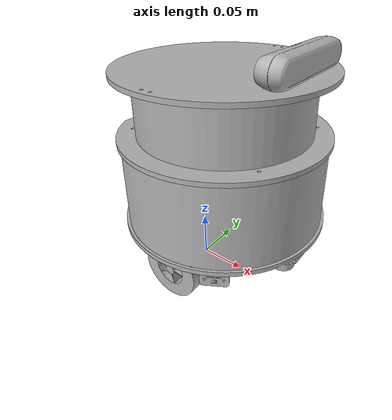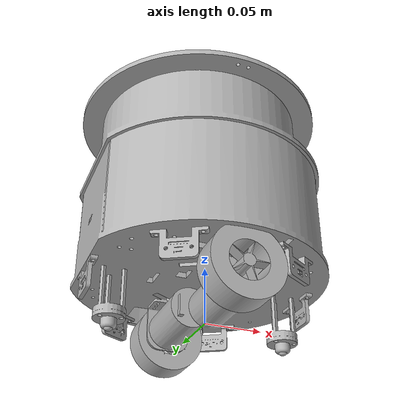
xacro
<?xml version="1.0" ?>
<robot name="prota" xmlns:xacro="http://www.ros.org/wiki/xacro">

<xacro:include filename="$(find prota_description)/urdf/materials.xacro" />
<xacro:include filename="$(find prota_description)/urdf/prota.trans" />
<xacro:include filename="$(find prota_description)/urdf/prota.gazebo" />
<link name="base_link">
  <inertial>
    <origin xyz="0.006396433432793894 0.03089442948823982 0.06488006730219237" rpy="0 0 0"/>
    <mass value="4.222555661782558"/>
    <inertia ixx="0.017324" iyy="0.018116" izz="0.025673" ixy="0.000273" iyz="-2e-06" ixz="7.6e-05"/>
  </inertial>
  <visual>
    <origin xyz="0 0 0" rpy="0 0 0"/>
    <geometry>
      <mesh filename="package://prota_description/meshes/base_link.stl" scale="0.001 0.001 0.001"/>
    </geometry>
    <material name="silver"/>
  </visual>
  <collision>
    <origin xyz="0 0 0" rpy="0 0 0"/>
    <geometry>
      <mesh filename="package://prota_description/meshes/base_link.stl" scale="0.001 0.001 0.001"/>
    </geometry>
  </collision>
</link>

<link name="laser">
  <inertial>
    <origin xyz="-0.03629449423619915 0.020488725085284334 0.03498272473261882" rpy="0 0 0"/>
    <mass value="1.137675971357522"/>
    <inertia ixx="0.000463" iyy="0.000738" izz="0.000919" ixy="-3e-06" iyz="-6e-06" ixz="0.000104"/>
  </inertial>
  <visual>
    <origin xyz="-0.044152 -0.010915 -0.151878" rpy="0 0 0"/>
    <geometry>
      <mesh filename="package://prota_description/meshes/laser_1_1.stl" scale="0.001 0.001 0.001"/>
    </geometry>
    <material name="silver"/>
  </visual>
  <collision>
    <origin xyz="-0.044152 -0.010915 -0.151878" rpy="0 0 0"/>
    <geometry>
      <mesh filename="package://prota_description/meshes/laser_1_1.stl" scale="0.001 0.001 0.001"/>
    </geometry>
  </collision>
</link>

<link name="layer_2_1_1">
  <inertial>
    <origin xyz="0.0014635654929070754 2.5196527501589183e-07 0.009794329588045297" rpy="0 0 0"/>
    <mass value="2.176651619891298"/>
    <inertia ixx="0.008665" iyy="0.008338" izz="0.015383" ixy="0.0" iyz="-0.0" ixz="3.3e-05"/>
  </inertial>
  <visual>
    <origin xyz="-0.006152 -0.030915 -0.149878" rpy="0 0 0"/>
    <geometry>
      <mesh filename="package://prota_description/meshes/layer_2_1_1.stl" scale="0.001 0.001 0.001"/>
    </geometry>
    <material name="silver"/>
  </visual>
  <collision>
    <origin xyz="-0.006152 -0.030915 -0.149878" rpy="0 0 0"/>
    <geometry>
      <mesh filename="package://prota_description/meshes/layer_2_1_1.stl" scale="0.001 0.001 0.001"/>
    </geometry>
  </collision>
</link>

<link name="top_plate_1">
  <inertial>
    <origin xyz="-2.428438707988839e-07 2.519657325110447e-07 -0.0004822773451587381" rpy="0 0 0"/>
    <mass value="1.6014131499694457"/>
    <inertia ixx="0.005255" iyy="0.005272" izz="0.01052" ixy="-0.0" iyz="-0.0" ixz="0.0"/>
  </inertial>
  <visual>
    <origin xyz="-0.006152 -0.030915 -0.218878" rpy="0 0 0"/>
    <geometry>
      <mesh filename="package://prota_description/meshes/top_plate_1.stl" scale="0.001 0.001 0.001"/>
    </geometry>
    <material name="silver"/>
  </visual>
  <collision>
    <origin xyz="-0.006152 -0.030915 -0.218878" rpy="0 0 0"/>
    <geometry>
      <mesh filename="package://prota_description/meshes/top_plate_1.stl" scale="0.001 0.001 0.001"/>
    </geometry>
  </collision>
</link>

<link name="realsense_1">
  <inertial>
    <origin xyz="0.113811788888566 -0.0059762229008155365 -0.02631354794020946" rpy="0 0 0"/>
    <mass value="0.421784739698528"/>
    <inertia ixx="0.000534" iyy="4.8e-05" izz="0.000525" ixy="-0.0" iyz="0.0" ixz="0.0"/>
  </inertial>
  <visual>
    <origin xyz="0.024763 -0.037067 -0.261757" rpy="0 0 0"/>
    <geometry>
      <mesh filename="package://prota_description/meshes/realsense_1.stl" scale="0.001 0.001 0.001"/>
    </geometry>
    <material name="silver"/>
  </visual>
  <collision>
    <origin xyz="0.024763 -0.037067 -0.261757" rpy="0 0 0"/>
    <geometry>
      <mesh filename="package://prota_description/meshes/realsense_1.stl" scale="0.001 0.001 0.001"/>
    </geometry>
  </collision>
</link>

<link name="tof_3_1_1">
  <inertial>
    <origin xyz="0.015265226364601488 -0.010089570729672571 -0.012545840261851363" rpy="0 0 0"/>
    <mass value="0.015633606424769256"/>
    <inertia ixx="1e-06" iyy="2e-06" izz="2e-06" ixy="1e-06" iyz="-0.0" ixz="-0.0"/>
  </inertial>
  <visual>
    <origin xyz="0.059594 0.04646 -0.048878" rpy="0 0 0"/>
    <geometry>
      <mesh filename="package://prota_description/meshes/tof_3_1_1.stl" scale="0.001 0.001 0.001"/>
    </geometry>
    <material name="silver"/>
  </visual>
  <collision>
    <origin xyz="0.059594 0.04646 -0.048878" rpy="0 0 0"/>
    <geometry>
      <mesh filename="package://prota_description/meshes/tof_3_1_1.stl" scale="0.001 0.001 0.001"/>
    </geometry>
  </collision>
</link>

<link name="tof_4_1_1">
  <inertial>
    <origin xyz="-0.0011052653494740133 -0.018264753887722168 -0.012545742138614611" rpy="0 0 0"/>
    <mass value="0.015633463049589128"/>
    <inertia ixx="3e-06" iyy="1e-06" izz="2e-06" ixy="0.0" iyz="-0.0" ixz="-0.0"/>
  </inertial>
  <visual>
    <origin xyz="0.09373 -0.049165 -0.048878" rpy="0 0 0"/>
    <geometry>
      <mesh filename="package://prota_description/meshes/tof_4_1_1.stl" scale="0.001 0.001 0.001"/>
    </geometry>
    <material name="silver"/>
  </visual>
  <collision>
    <origin xyz="0.09373 -0.049165 -0.048878" rpy="0 0 0"/>
    <geometry>
      <mesh filename="package://prota_description/meshes/tof_4_1_1.stl" scale="0.001 0.001 0.001"/>
    </geometry>
  </collision>
</link>

<link name="tof_5_1_1">
  <inertial>
    <origin xyz="-0.015265712052308512 0.010089074660609834 -0.012545840261851952" rpy="0 0 0"/>
    <mass value="0.01563360642476941"/>
    <inertia ixx="1e-06" iyy="2e-06" izz="2e-06" ixy="1e-06" iyz="0.0" ixz="0.0"/>
  </inertial>
  <visual>
    <origin xyz="-0.071898 -0.108291 -0.048878" rpy="0 0 0"/>
    <geometry>
      <mesh filename="package://prota_description/meshes/tof_5_1_1.stl" scale="0.001 0.001 0.001"/>
    </geometry>
    <material name="silver"/>
  </visual>
  <collision>
    <origin xyz="-0.071898 -0.108291 -0.048878" rpy="0 0 0"/>
    <geometry>
      <mesh filename="package://prota_description/meshes/tof_5_1_1.stl" scale="0.001 0.001 0.001"/>
    </geometry>
  </collision>
</link>

<link name="tof_1_1_1">
  <inertial>
    <origin xyz="0.0011047796604614357 0.01826523332013307 -0.012545742122750246" rpy="0 0 0"/>
    <mass value="0.015633463070950107"/>
    <inertia ixx="3e-06" iyy="1e-06" izz="2e-06" ixy="0.0" iyz="0.0" ixz="0.0"/>
  </inertial>
  <visual>
    <origin xyz="-0.106034 -0.012665 -0.048878" rpy="0 0 0"/>
    <geometry>
      <mesh filename="package://prota_description/meshes/tof_1_1_1.stl" scale="0.001 0.001 0.001"/>
    </geometry>
    <material name="silver"/>
  </visual>
  <collision>
    <origin xyz="-0.106034 -0.012665 -0.048878" rpy="0 0 0"/>
    <geometry>
      <mesh filename="package://prota_description/meshes/tof_1_1_1.stl" scale="0.001 0.001 0.001"/>
    </geometry>
  </collision>
</link>

<link name="right_wheel_1_1">
  <inertial>
    <origin xyz="-0.049443213920577156 -0.09496534594649626 -0.04887829558751838" rpy="0 0 0"/>
    <mass value="0.0770788904311176"/>
    <inertia ixx="3e-05" iyy="5e-05" izz="3e-05" ixy="0.0" iyz="-0.0" ixz="0.0"/>
  </inertial>
  <visual>
    <origin xyz="-0.057443 -0.038915 -0.07609" rpy="0 0 0"/>
    <geometry>
      <mesh filename="package://prota_description/meshes/right_wheel_1_1.stl" scale="0.001 0.001 0.001"/>
    </geometry>
    <material name="silver"/>
  </visual>
  <collision>
    <origin xyz="-0.057443 -0.038915 -0.07609" rpy="0 0 0"/>
    <geometry>
      <mesh filename="package://prota_description/meshes/right_wheel_1_1.stl" scale="0.001 0.001 0.001"/>
    </geometry>
  </collision>
</link>

<link name="left_wheel_1_1">
  <inertial>
    <origin xyz="0.11430468395298124 0.07921874901325579 -0.04887867451900599" rpy="0 0 0"/>
    <mass value="0.0770788904311176"/>
    <inertia ixx="3e-05" iyy="5e-05" izz="3e-05" ixy="0.0" iyz="-0.0" ixz="0.0"/>
  </inertial>
  <visual>
    <origin xyz="0.106764 -0.038456 -0.076006" rpy="0 0 0"/>
    <geometry>
      <mesh filename="package://prota_description/meshes/left_wheel_1_1.stl" scale="0.001 0.001 0.001"/>
    </geometry>
    <material name="silver"/>
  </visual>
  <collision>
    <origin xyz="0.106764 -0.038456 -0.076006" rpy="0 0 0"/>
    <geometry>
      <mesh filename="package://prota_description/meshes/left_wheel_1_1.stl" scale="0.001 0.001 0.001"/>
    </geometry>
  </collision>
</link>

<link name="tof_2_1_1">
  <inertial>
    <origin xyz="-0.015239749848131992 -0.010074581444102435 -0.012545840261851349" rpy="0 0 0"/>
    <mass value="0.015633606424769186"/>
    <inertia ixx="1e-06" iyy="2e-06" izz="2e-06" ixy="-1e-06" iyz="-0.0" ixz="0.0"/>
  </inertial>
  <visual>
    <origin xyz="-0.071898 0.04646 -0.048878" rpy="0 0 0"/>
    <geometry>
      <mesh filename="package://prota_description/meshes/tof_2_1_1.stl" scale="0.001 0.001 0.001"/>
    </geometry>
    <material name="silver"/>
  </visual>
  <collision>
    <origin xyz="-0.071898 0.04646 -0.048878" rpy="0 0 0"/>
    <geometry>
      <mesh filename="package://prota_description/meshes/tof_2_1_1.stl" scale="0.001 0.001 0.001"/>
    </geometry>
  </collision>
</link>

<link name="tof_6_1_1">
  <inertial>
    <origin xyz="0.015239264160425002 0.010074085375039524 -0.012545840261851987" rpy="0 0 0"/>
    <mass value="0.015633606424769297"/>
    <inertia ixx="1e-06" iyy="2e-06" izz="2e-06" ixy="-1e-06" iyz="0.0" ixz="-0.0"/>
  </inertial>
  <visual>
    <origin xyz="0.059594 -0.108291 -0.048878" rpy="0 0 0"/>
    <geometry>
      <mesh filename="package://prota_description/meshes/tof_6_1_1.stl" scale="0.001 0.001 0.001"/>
    </geometry>
    <material name="silver"/>
  </visual>
  <collision>
    <origin xyz="0.059594 -0.108291 -0.048878" rpy="0 0 0"/>
    <geometry>
      <mesh filename="package://prota_description/meshes/tof_6_1_1.stl" scale="0.001 0.001 0.001"/>
    </geometry>
  </collision>
</link>

<link name="right_caster_1">
  <inertial>
    <origin xyz="-1.8273720515937786e-07 2.519654686075623e-07 -0.004032171982407477" rpy="0 0 0"/>
    <mass value="0.008869496244105208"/>
    <inertia ixx="0.0" iyy="0.0" izz="0.0" ixy="-0.0" iyz="0.0" ixz="-0.0"/>
  </inertial>
  <visual>
    <origin xyz="0.07251 -0.030915 -0.004816" rpy="0 0 0"/>
    <geometry>
      <mesh filename="package://prota_description/meshes/right_caster_1.stl" scale="0.001 0.001 0.001"/>
    </geometry>
    <material name="silver"/>
  </visual>
  <collision>
    <origin xyz="0.07251 -0.030915 -0.004816" rpy="0 0 0"/>
    <geometry>
      <mesh filename="package://prota_description/meshes/right_caster_1.stl" scale="0.001 0.001 0.001"/>
    </geometry>
  </collision>
</link>

<link name="left_caster_1">
  <inertial>
    <origin xyz="-1.8273720486794431e-07 2.519654682814343e-07 -0.004032171982407557" rpy="0 0 0"/>
    <mass value="0.008869496244105213"/>
    <inertia ixx="0.0" iyy="0.0" izz="0.0" ixy="0.0" iyz="-0.0" ixz="0.0"/>
  </inertial>
  <visual>
    <origin xyz="-0.08749 -0.030915 -0.004816" rpy="0 0 0"/>
    <geometry>
      <mesh filename="package://prota_description/meshes/left_caster_1.stl" scale="0.001 0.001 0.001"/>
    </geometry>
    <material name="silver"/>
  </visual>
  <collision>
    <origin xyz="-0.08749 -0.030915 -0.004816" rpy="0 0 0"/>
    <geometry>
      <mesh filename="package://prota_description/meshes/left_caster_1.stl" scale="0.001 0.001 0.001"/>
    </geometry>
  </collision>
</link>

<joint name="Rigid15" type="fixed">
  <origin xyz="0.038 -0.02 0.002" rpy="0 0 0"/>
  <parent link="layer_2_1_1"/>
  <child link="laser"/>
</joint>

<joint name="Rigid16" type="fixed">
  <origin xyz="0.006152 0.030915 0.149878" rpy="0 0 0"/>
  <parent link="base_link"/>
  <child link="layer_2_1_1"/>
</joint>

<joint name="Rigid17" type="fixed">
  <origin xyz="0.0 0.0 0.069" rpy="0 0 0"/>
  <parent link="layer_2_1_1"/>
  <child link="top_plate_1"/>
</joint>

<joint name="Rigid18" type="fixed">
  <origin xyz="-0.030915 0.006152 0.042879" rpy="0 0 0"/>
  <parent link="top_plate_1"/>
  <child link="realsense_1"/>
</joint>

<joint name="Rigid20" type="fixed">
  <origin xyz="-0.059594 -0.04646 0.048878" rpy="0 0 0"/>
  <parent link="base_link"/>
  <child link="tof_3_1_1"/>
</joint>

<joint name="Rigid21" type="fixed">
  <origin xyz="-0.09373 0.049165 0.048878" rpy="0 0 0"/>
  <parent link="base_link"/>
  <child link="tof_4_1_1"/>
</joint>

<joint name="Rigid23" type="fixed">
  <origin xyz="0.071898 0.108291 0.048878" rpy="0 0 0"/>
  <parent link="base_link"/>
  <child link="tof_5_1_1"/>
</joint>

<joint name="Rigid24" type="fixed">
  <origin xyz="0.106034 0.012665 0.048878" rpy="0 0 0"/>
  <parent link="base_link"/>
  <child link="tof_1_1_1"/>
</joint>

<joint name="Rev28" type="continuous">
  <origin xyz="0.057443 0.038915 0.07609" rpy="0 0 0"/>
  <parent link="base_link"/>
  <child link="right_wheel_1_1"/>
  <axis xyz="-0.0 1.0 0.0"/>
</joint>

<joint name="Rev29" type="continuous">
  <origin xyz="-0.106764 0.038456 0.076006" rpy="0 0 0"/>
  <parent link="base_link"/>
  <child link="left_wheel_1_1"/>
  <axis xyz="0.0 1.0 -0.0"/>
</joint>

<joint name="Rigid30" type="fixed">
  <origin xyz="0.071898 -0.04646 0.048878" rpy="0 0 0"/>
  <parent link="base_link"/>
  <child link="tof_2_1_1"/>
</joint>

<joint name="Rigid31" type="fixed">
  <origin xyz="-0.059594 0.108291 0.048878" rpy="0 0 0"/>
  <parent link="base_link"/>
  <child link="tof_6_1_1"/>
</joint>

<joint name="Rigid32" type="fixed">
  <origin xyz="-0.07251 0.030915 0.004816" rpy="0 0 0"/>
  <parent link="base_link"/>
  <child link="right_caster_1"/>
</joint>

<joint name="Rigid33" type="fixed">
  <origin xyz="0.08749 0.030915 0.004816" rpy="0 0 0"/>
  <parent link="base_link"/>
  <child link="left_caster_1"/>
</joint>

</robot>

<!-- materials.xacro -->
<robot name="prota" xmlns:xacro="http://www.ros.org/wiki/xacro" >

<material name="silver">
  <color rgba="0.700 0.700 0.700 1.000"/>
</material>

</robot>

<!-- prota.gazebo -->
<robot name="prota" xmlns:xacro="http://www.ros.org/wiki/xacro" >

<xacro:property name="body_color" value="Gazebo/Silver" />

<gazebo>
  <plugin name="control" filename="libgazebo_ros_control.so"/>
</gazebo>
<gazebo reference="base_link">
  <material>${body_color}</material>
  <mu1>1</mu1>
  <mu2>1</mu2>
  <selfCollide>true</selfCollide>
  <gravity>true</gravity>
</gazebo>

<gazebo reference="laser_1_1">
  <material>${body_color}</material>
  <mu1>1</mu1>
  <mu2>1</mu2>
  <selfCollide>true</selfCollide>
</gazebo>

<gazebo reference="layer_2_1_1">
  <material>${body_color}</material>
  <mu1>1</mu1>
  <mu2>1</mu2>
  <selfCollide>true</selfCollide>
</gazebo>

<gazebo reference="top_plate_1">
  <material>${body_color}</material>
  <mu1>1</mu1>
  <mu2>1</mu2>
  <selfCollide>true</selfCollide>
</gazebo>

<gazebo reference="realsense_1">
  <material>${body_color}</material>
  <mu1>1</mu1>
  <mu2>1</mu2>
  <selfCollide>true</selfCollide>
</gazebo>

<gazebo reference="tof_3_1_1">
  <material>${body_color}</material>
  <mu1>1</mu1>
  <mu2>1</mu2>
  <selfCollide>true</selfCollide>
</gazebo>

<gazebo reference="tof_4_1_1">
  <material>${body_color}</material>
  <mu1>1</mu1>
  <mu2>1</mu2>
  <selfCollide>true</selfCollide>
</gazebo>

<gazebo reference="tof_5_1_1">
  <material>${body_color}</material>
  <mu1>1</mu1>
  <mu2>1</mu2>
  <selfCollide>true</selfCollide>
</gazebo>

<gazebo reference="tof_1_1_1">
  <material>${body_color}</material>
  <mu1>1</mu1>
  <mu2>1</mu2>
  <selfCollide>true</selfCollide>
</gazebo>

<gazebo reference="right_wheel_1_1">
  <material>${body_color}</material>
  <mu1>100</mu1>
  <mu2>100</mu2>
  <selfCollide>true</selfCollide>
</gazebo>

<gazebo reference="left_wheel_1_1">
  <material>${body_color}</material>
  <mu1>100</mu1>
  <mu2>100</mu2>
  <selfCollide>true</selfCollide>
</gazebo>

<gazebo reference="tof_2_1_1">
  <material>${body_color}</material>
  <mu1>1</mu1>
  <mu2>1</mu2>
  <selfCollide>true</selfCollide>
</gazebo>

<gazebo reference="tof_6_1_1">
  <material>${body_color}</material>
  <mu1>1</mu1>
  <mu2>1</mu2>
  <selfCollide>true</selfCollide>
</gazebo>

<gazebo reference="right_caster_1">
  <material>${body_color}</material>
  <mu1>0.01</mu1>
  <mu2>0.01</mu2>
  <selfCollide>true</selfCollide>
</gazebo>

<gazebo reference="left_caster_1">
  <material>${body_color}</material>
  <mu1>0.01</mu1>
  <mu2>0.01</mu2>
  <selfCollide>true</selfCollide>
</gazebo>

<gazebo>
  <plugin name="differential_drive_controller" filename="libgazebo_ros_diff_drive.so">

    <!-- Plugin update rate in Hz -->
    <updateRate>10</updateRate>

    <!-- Name of left joint, defaults to `left_joint` -->
    <leftJoint>Rev29</leftJoint>

    <!-- Name of right joint, defaults to `right_joint` -->
    <rightJoint>Rev28</rightJoint>

    <!-- The distance from the center of one wheel to the other, in meters, defaults to 0.34 m -->
    <wheelSeparation>0.146687</wheelSeparation>

    <!-- Diameter of the wheels, in meters, defaults to 0.15 m -->
    <wheelDiameter>0.0648</wheelDiameter>

    <!-- Wheel acceleration, in rad/s^2, defaults to 0.0 rad/s^2 -->
    <wheelAcceleration>1.0</wheelAcceleration>

    <!-- Maximum torque which the wheels can produce, in Nm, defaults to 5 Nm -->
    <wheelTorque>20</wheelTorque>

    <!-- Topic to receive geometry_msgs/Twist message commands, defaults to `cmd_vel` -->
    <commandTopic>cmd_vel</commandTopic>

    <!-- Topic to publish nav_msgs/Odometry messages, defaults to `odom` -->
    <odometryTopic>odom</odometryTopic>

    <!-- Odometry frame, defaults to `odom` -->
    <odometryFrame>odom</odometryFrame>

    <!-- Robot frame to calculate odometry from, defaults to `base_footprint` -->
    <robotBaseFrame>base_link</robotBaseFrame>

    <!-- Odometry source, 0 for ENCODER, 1 for WORLD, defaults to WORLD -->
    <odometrySource>1</odometrySource>

    <!-- Set to true to publish transforms for the wheel links, defaults to false -->
    <publishWheelTF>true</publishWheelTF>

    <!-- Set to true to publish transforms for the odometry, defaults to true -->
    <publishOdom>true</publishOdom>

    <!-- Set to true to publish sensor_msgs/JointState on /joint_states for the wheel joints, defaults to false -->
    <publishWheelJointState>true</publishWheelJointState>

    <!-- Set to true to swap right and left wheels, defaults to true -->
    <legacyMode>false</legacyMode>
  </plugin>
</gazebo>

</robot>
